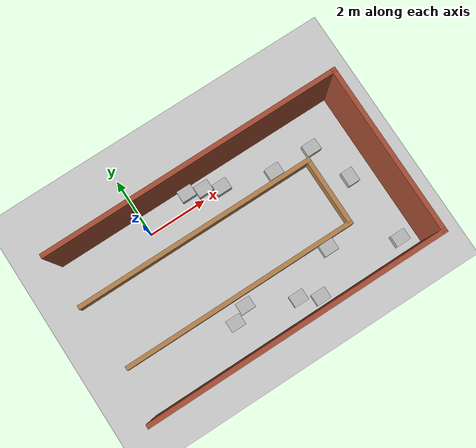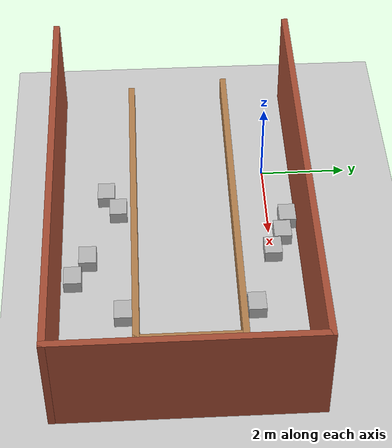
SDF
<sdf version="1.7">
 <world name="default">
  <light name="sun" type="directional">
   <pose>0 0 10 0 -0 0</pose>
   <diffuse>0.8 0.8 0.8 1</diffuse>
   <specular>0.2 0.2 0.2 1</specular>
   <attenuation>
    <range>1000</range>
    <constant>0.9</constant>
    <linear>0.01</linear>
    <quadratic>0.001</quadratic>
   </attenuation>
   <direction>-0.5 0.1 -0.9</direction>
   <spot><inner_angle>0</inner_angle><outer_angle>0</outer_angle><falloff>0</falloff></spot>
  </light>
  <model name="ground_plane">
   <static>1</static>
   <link name="link">
    <collision name="collision">
     <geometry><plane><normal>0 0 1</normal><size>100 100</size></plane></geometry>
     <surface><friction><ode><mu>100</mu><mu2>50</mu2></ode></friction></surface>
    </collision>
    <visual name="visual">
     <cast_shadows>0</cast_shadows>
     <geometry><plane><normal>0 0 1</normal><size>100 100</size></plane></geometry>
     <material>
      <script><uri>file://media/materials/scripts/gazebo.material</uri><name>Gazebo/Grey</name></script>
     </material>
    </visual>
   </link>
  </model>
  <gravity>0 0 -9.8</gravity>
  <magnetic_field>6e-06 2.3e-05 -4.2e-05</magnetic_field>
  <atmosphere type="adiabatic"/>
  <physics type="ode">
   <max_step_size>0.001</max_step_size>
   <real_time_factor>1</real_time_factor>
   <real_time_update_rate>1000</real_time_update_rate>
  </physics>
  <scene><ambient>0.4 0.4 0.4 1</ambient><background>0.7 0.7 0.7 1</background><shadows>1</shadows></scene>
  <spherical_coordinates>
   <surface_model>EARTH_WGS84</surface_model>
   <latitude_deg>0</latitude_deg>
   <longitude_deg>0</longitude_deg>
   <elevation>0</elevation>
   <heading_deg>0</heading_deg>
  </spherical_coordinates>
  <model name="walls">
   <pose>2.04509 -2.07445 0 0 -0 0</pose>
   <link name="Wall_0">
    <collision name="Wall_0_Collision">
     <geometry><box><size>10 0.15 2.5</size></box></geometry>
     <pose>0 0 1.25 0 -0 0</pose>
    </collision>
    <visual name="Wall_0_Visual">
     <pose>0 0 1.25 0 -0 0</pose>
     <geometry><box><size>10 0.15 2.5</size></box></geometry>
     <material>
      <script><uri>file://media/materials/scripts/gazebo.material</uri><name>Gazebo/Bricks</name></script>
      <ambient>1 1 1 1</ambient>
     </material>
     <meta><layer>0</layer></meta>
    </visual>
    <pose>0.095089 2.8 0 0 -0 0</pose>
   </link>
   <link name="Wall_2">
    <collision name="Wall_2_Collision">
     <geometry><box><size>5.75 0.15 2.5</size></box></geometry>
     <pose>0 0 1.25 0 -0 0</pose>
    </collision>
    <visual name="Wall_2_Visual">
     <pose>0 0 1.25 0 -0 0</pose>
     <geometry><box><size>5.75 0.15 2.5</size></box></geometry>
     <material>
      <script><uri>file://media/materials/scripts/gazebo.material</uri><name>Gazebo/Bricks</name></script>
      <ambient>1 1 1 1</ambient>
     </material>
     <meta><layer>0</layer></meta>
    </visual>
    <pose>5.02009 0 0 0 -0 -1.5708</pose>
   </link>
   <link name="Wall_3">
    <collision name="Wall_3_Collision">
     <geometry><box><size>10 0.15 2.5</size></box></geometry>
     <pose>0 0 1.25 0 -0 0</pose>
    </collision>
    <visual name="Wall_3_Visual">
     <pose>0 0 1.25 0 -0 0</pose>
     <geometry><box><size>10 0.15 2.5</size></box></geometry>
     <material>
      <script><uri>file://media/materials/scripts/gazebo.material</uri><name>Gazebo/Bricks</name></script>
      <ambient>1 1 1 1</ambient>
     </material>
     <meta><layer>0</layer></meta>
    </visual>
    <pose>0.095089 -2.8 0 0 -0 3.14159</pose>
   </link>
   <link name="Wall_5">
    <collision name="Wall_5_Collision">
     <geometry><box><size>8.5 0.15 0.5</size></box></geometry>
     <pose>0 0 0.25 0 -0 0</pose>
    </collision>
    <visual name="Wall_5_Visual">
     <pose>0 0 0.25 0 -0 0</pose>
     <geometry><box><size>8.5 0.15 0.5</size></box></geometry>
     <material>
      <script><uri>file://media/materials/scripts/gazebo.material</uri><name>Gazebo/Wood</name></script>
      <ambient>1 1 1 1</ambient>
     </material>
     <meta><layer>0</layer></meta>
    </visual>
    <pose>-0.84509 1.30145 0 0 -0 0</pose>
   </link>
   <link name="Wall_7">
    <collision name="Wall_7_Collision">
     <geometry><box><size>2.5 0.15 0.5</size></box></geometry>
     <pose>0 0 0.25 0 -0 0</pose>
    </collision>
    <visual name="Wall_7_Visual">
     <pose>0 0 0.25 0 -0 0</pose>
     <geometry><box><size>2.5 0.15 0.5</size></box></geometry>
     <material>
      <script><uri>file://media/materials/scripts/gazebo.material</uri><name>Gazebo/Wood</name></script>
      <ambient>1 1 1 1</ambient>
     </material>
     <meta><layer>0</layer></meta>
    </visual>
    <pose>3.32991 0.126453 0 0 -0 -1.5708</pose>
   </link>
   <link name="Wall_8">
    <collision name="Wall_8_Collision">
     <geometry><box><size>8.25 0.15 0.5</size></box></geometry>
     <pose>0 0 0.25 0 -0 0</pose>
    </collision>
    <visual name="Wall_8_Visual">
     <pose>0 0 0.25 0 -0 0</pose>
     <geometry><box><size>8.25 0.15 0.5</size></box></geometry>
     <material>
      <script><uri>file://media/materials/scripts/gazebo.material</uri><name>Gazebo/Wood</name></script>
      <ambient>1 1 1 1</ambient>
     </material>
     <meta><layer>0</layer></meta>
    </visual>
    <pose>-0.72009 -1.04855 0 0 -0 3.14159</pose>
   </link>
   <static>1</static>
  </model>
  <model name="cardboard_box">
   <pose>1.63786 0.454688 0.15 0 -0 0</pose>
   <link name="link">
    <inertial>
     <mass>2</mass>
     <inertia>
      <ixx>0.0416667</ixx>
      <ixy>0</ixy>
      <ixz>0</ixz>
      <iyy>0.0566667</iyy>
      <iyz>0</iyz>
      <izz>0.0683333</izz>
     </inertia>
    </inertial>
    <collision name="collision">
     <geometry><box><size>0.5 0.4 0.3</size></box></geometry>
     <surface>
      <friction><ode><mu>1</mu><mu2>1</mu2></ode></friction>
      <contact><ode><kp>1e+07</kp><kd>1</kd><min_depth>0.001</min_depth><max_vel>0.1</max_vel></ode></contact>
     </surface>
    </collision>
    <visual name="visual">
     <pose>0 0 -0.15 0 -0 0</pose>
     <geometry>
      <mesh><uri>model://cardboard_box/meshes/cardboard_box.dae</uri><scale>1.25932 1.00745 0.755591</scale></mesh>
     </geometry>
    </visual>
   </link>
  </model>
  <model name="cardboard_box_0">
   <pose>2.15817 0.295345 0.15 0 -0 0</pose>
   <link name="link">
    <inertial>
     <mass>2</mass>
     <inertia>
      <ixx>0.0416667</ixx>
      <ixy>0</ixy>
      <ixz>0</ixz>
      <iyy>0.0566667</iyy>
      <iyz>0</iyz>
      <izz>0.0683333</izz>
     </inertia>
    </inertial>
    <collision name="collision">
     <geometry><box><size>0.5 0.4 0.3</size></box></geometry>
     <surface>
      <friction><ode><mu>1</mu><mu2>1</mu2></ode></friction>
      <contact><ode><kp>1e+07</kp><kd>1</kd><min_depth>0.001</min_depth><max_vel>0.1</max_vel></ode></contact>
     </surface>
    </collision>
    <visual name="visual">
     <pose>0 0 -0.15 0 -0 0</pose>
     <geometry>
      <mesh><uri>model://cardboard_box/meshes/cardboard_box.dae</uri><scale>1.25932 1.00745 0.755591</scale></mesh>
     </geometry>
    </visual>
   </link>
  </model>
  <model name="cardboard_box_1">
   <pose>2.67462 0.032632 0.15 0 -0 0</pose>
   <link name="link">
    <inertial>
     <mass>2</mass>
     <inertia>
      <ixx>0.0416667</ixx>
      <ixy>0</ixy>
      <ixz>0</ixz>
      <iyy>0.0566667</iyy>
      <iyz>0</iyz>
      <izz>0.0683333</izz>
     </inertia>
    </inertial>
    <collision name="collision">
     <geometry><box><size>0.5 0.4 0.3</size></box></geometry>
     <surface>
      <friction><ode><mu>1</mu><mu2>1</mu2></ode></friction>
      <contact><ode><kp>1e+07</kp><kd>1</kd><min_depth>0.001</min_depth><max_vel>0.1</max_vel></ode></contact>
     </surface>
    </collision>
    <visual name="visual">
     <pose>0 0 -0.15 0 -0 0</pose>
     <geometry>
      <mesh><uri>model://cardboard_box/meshes/cardboard_box.dae</uri><scale>1.25932 1.00745 0.755591</scale></mesh>
     </geometry>
    </visual>
   </link>
  </model>
  <model name="cardboard_box_2">
   <pose>4.31934 -0.45784 0.15 0 -0 0</pose>
   <link name="link">
    <inertial>
     <mass>2</mass>
     <inertia>
      <ixx>0.0416667</ixx>
      <ixy>0</ixy>
      <ixz>0</ixz>
      <iyy>0.0566667</iyy>
      <iyz>0</iyz>
      <izz>0.0683333</izz>
     </inertia>
    </inertial>
    <collision name="collision">
     <geometry><box><size>0.5 0.4 0.3</size></box></geometry>
     <surface>
      <friction><ode><mu>1</mu><mu2>1</mu2></ode></friction>
      <contact><ode><kp>1e+07</kp><kd>1</kd><min_depth>0.001</min_depth><max_vel>0.1</max_vel></ode></contact>
     </surface>
    </collision>
    <visual name="visual">
     <pose>0 0 -0.15 0 -0 0</pose>
     <geometry>
      <mesh><uri>model://cardboard_box/meshes/cardboard_box.dae</uri><scale>1.25932 1.00745 0.755591</scale></mesh>
     </geometry>
    </visual>
   </link>
  </model>
  <model name="cardboard_box_3">
   <pose>5.72431 -0.464523 0.15 0 -0 0</pose>
   <link name="link">
    <inertial>
     <mass>2</mass>
     <inertia>
      <ixx>0.0416667</ixx>
      <ixy>0</ixy>
      <ixz>0</ixz>
      <iyy>0.0566667</iyy>
      <iyz>0</iyz>
      <izz>0.0683333</izz>
     </inertia>
    </inertial>
    <collision name="collision">
     <geometry><box><size>0.5 0.4 0.3</size></box></geometry>
     <surface>
      <friction><ode><mu>1</mu><mu2>1</mu2></ode></friction>
      <contact><ode><kp>1e+07</kp><kd>1</kd><min_depth>0.001</min_depth><max_vel>0.1</max_vel></ode></contact>
     </surface>
    </collision>
    <visual name="visual">
     <pose>0 0 -0.15 0 -0 0</pose>
     <geometry>
      <mesh><uri>model://cardboard_box/meshes/cardboard_box.dae</uri><scale>1.25932 1.00745 0.755591</scale></mesh>
     </geometry>
    </visual>
   </link>
  </model>
  <model name="cardboard_box_4">
   <pose>6.2272 -1.90551 0.15 0 0 -1.57559</pose>
   <link name="link">
    <inertial>
     <mass>2</mass>
     <inertia>
      <ixx>0.0416667</ixx>
      <ixy>0</ixy>
      <ixz>0</ixz>
      <iyy>0.0566667</iyy>
      <iyz>0</iyz>
      <izz>0.0683333</izz>
     </inertia>
    </inertial>
    <collision name="collision">
     <geometry><box><size>0.5 0.4 0.3</size></box></geometry>
     <surface>
      <friction><ode><mu>1</mu><mu2>1</mu2></ode></friction>
      <contact><ode><kp>1e+07</kp><kd>1</kd><min_depth>0.001</min_depth><max_vel>0.1</max_vel></ode></contact>
     </surface>
    </collision>
    <visual name="visual">
     <pose>0 0 -0.15 0 -0 0</pose>
     <geometry>
      <mesh><uri>model://cardboard_box/meshes/cardboard_box.dae</uri><scale>1.25932 1.00745 0.755591</scale></mesh>
     </geometry>
    </visual>
   </link>
  </model>
  <model name="cardboard_box_5">
   <pose>6.4522 -4.3572 0.15 0 -0 0</pose>
   <link name="link">
    <inertial>
     <mass>2</mass>
     <inertia>
      <ixx>0.0416667</ixx>
      <ixy>0</ixy>
      <ixz>0</ixz>
      <iyy>0.0566667</iyy>
      <iyz>0</iyz>
      <izz>0.0683333</izz>
     </inertia>
    </inertial>
    <collision name="collision">
     <geometry><box><size>0.5 0.4 0.3</size></box></geometry>
     <surface>
      <friction><ode><mu>1</mu><mu2>1</mu2></ode></friction>
      <contact><ode><kp>1e+07</kp><kd>1</kd><min_depth>0.001</min_depth><max_vel>0.1</max_vel></ode></contact>
     </surface>
    </collision>
    <visual name="visual">
     <pose>0 0 -0.15 0 -0 0</pose>
     <geometry>
      <mesh><uri>model://cardboard_box/meshes/cardboard_box.dae</uri><scale>1.25932 1.00745 0.755591</scale></mesh>
     </geometry>
    </visual>
   </link>
  </model>
  <model name="cardboard_box_6">
   <pose>4.40984 -3.39727 0.15 0 -0 0</pose>
   <link name="link">
    <inertial>
     <mass>2</mass>
     <inertia>
      <ixx>0.0416667</ixx>
      <ixy>0</ixy>
      <ixz>0</ixz>
      <iyy>0.0566667</iyy>
      <iyz>0</iyz>
      <izz>0.0683333</izz>
     </inertia>
    </inertial>
    <collision name="collision">
     <geometry><box><size>0.5 0.4 0.3</size></box></geometry>
     <surface>
      <friction><ode><mu>1</mu><mu2>1</mu2></ode></friction>
      <contact><ode><kp>1e+07</kp><kd>1</kd><min_depth>0.001</min_depth><max_vel>0.1</max_vel></ode></contact>
     </surface>
    </collision>
    <visual name="visual">
     <pose>0 0 -0.15 0 -0 0</pose>
     <geometry>
      <mesh><uri>model://cardboard_box/meshes/cardboard_box.dae</uri><scale>1.25932 1.00745 0.755591</scale></mesh>
     </geometry>
    </visual>
   </link>
  </model>
  <model name="cardboard_box_7">
   <pose>3.36927 -4.52255 0.15 0 -0 0</pose>
   <link name="link">
    <inertial>
     <mass>2</mass>
     <inertia>
      <ixx>0.0416667</ixx>
      <ixy>0</ixy>
      <ixz>0</ixz>
      <iyy>0.0566667</iyy>
      <iyz>0</iyz>
      <izz>0.0683333</izz>
     </inertia>
    </inertial>
    <collision name="collision">
     <geometry><box><size>0.5 0.4 0.3</size></box></geometry>
     <surface>
      <friction><ode><mu>1</mu><mu2>1</mu2></ode></friction>
      <contact><ode><kp>1e+07</kp><kd>1</kd><min_depth>0.001</min_depth><max_vel>0.1</max_vel></ode></contact>
     </surface>
    </collision>
    <visual name="visual">
     <pose>0 0 -0.15 0 -0 0</pose>
     <geometry>
      <mesh><uri>model://cardboard_box/meshes/cardboard_box.dae</uri><scale>1.25932 1.00745 0.755591</scale></mesh>
     </geometry>
    </visual>
   </link>
  </model>
  <model name="cardboard_box_8">
   <pose>2.76345 -4.19289 0.15 0 -0 0</pose>
   <link name="link">
    <inertial>
     <mass>2</mass>
     <inertia>
      <ixx>0.0416667</ixx>
      <ixy>0</ixy>
      <ixz>0</ixz>
      <iyy>0.0566667</iyy>
      <iyz>0</iyz>
      <izz>0.0683333</izz>
     </inertia>
    </inertial>
    <collision name="collision">
     <geometry><box><size>0.5 0.4 0.3</size></box></geometry>
     <surface>
      <friction><ode><mu>1</mu><mu2>1</mu2></ode></friction>
      <contact><ode><kp>1e+07</kp><kd>1</kd><min_depth>0.001</min_depth><max_vel>0.1</max_vel></ode></contact>
     </surface>
    </collision>
    <visual name="visual">
     <pose>0 0 -0.15 0 -0 0</pose>
     <geometry>
      <mesh><uri>model://cardboard_box/meshes/cardboard_box.dae</uri><scale>1.25932 1.00745 0.755591</scale></mesh>
     </geometry>
    </visual>
   </link>
  </model>
  <model name="cardboard_box_9">
   <pose>1.26148 -3.48841 0.15 0 -0 0</pose>
   <link name="link">
    <inertial>
     <mass>2</mass>
     <inertia>
      <ixx>0.0416667</ixx>
      <ixy>0</ixy>
      <ixz>0</ixz>
      <iyy>0.0566667</iyy>
      <iyz>0</iyz>
      <izz>0.0683333</izz>
     </inertia>
    </inertial>
    <collision name="collision">
     <geometry><box><size>0.5 0.4 0.3</size></box></geometry>
     <surface>
      <friction><ode><mu>1</mu><mu2>1</mu2></ode></friction>
      <contact><ode><kp>1e+07</kp><kd>1</kd><min_depth>0.001</min_depth><max_vel>0.1</max_vel></ode></contact>
     </surface>
    </collision>
    <visual name="visual">
     <pose>0 0 -0.15 0 -0 0</pose>
     <geometry>
      <mesh><uri>model://cardboard_box/meshes/cardboard_box.dae</uri><scale>1.25932 1.00745 0.755591</scale></mesh>
     </geometry>
    </visual>
   </link>
  </model>
  <model name="cardboard_box_10">
   <pose>0.724948 -3.77059 0.15 0 -0 0</pose>
   <link name="link">
    <inertial>
     <mass>2</mass>
     <inertia>
      <ixx>0.0416667</ixx>
      <ixy>0</ixy>
      <ixz>0</ixz>
      <iyy>0.0566667</iyy>
      <iyz>0</iyz>
      <izz>0.0683333</izz>
     </inertia>
    </inertial>
    <collision name="collision">
     <geometry><box><size>0.5 0.4 0.3</size></box></geometry>
     <surface>
      <friction><ode><mu>1</mu><mu2>1</mu2></ode></friction>
      <contact><ode><kp>1e+07</kp><kd>1</kd><min_depth>0.001</min_depth><max_vel>0.1</max_vel></ode></contact>
     </surface>
    </collision>
    <visual name="visual">
     <pose>0 0 -0.15 0 -0 0</pose>
     <geometry>
      <mesh><uri>model://cardboard_box/meshes/cardboard_box.dae</uri><scale>1.25932 1.00745 0.755591</scale></mesh>
     </geometry>
    </visual>
   </link>
  </model>
 </world>
</sdf>
